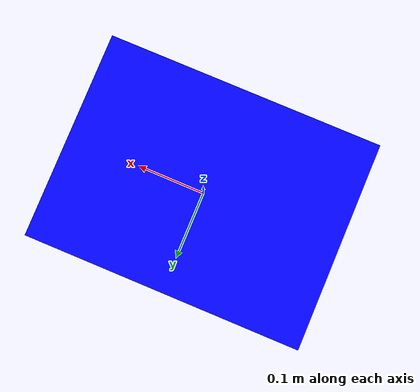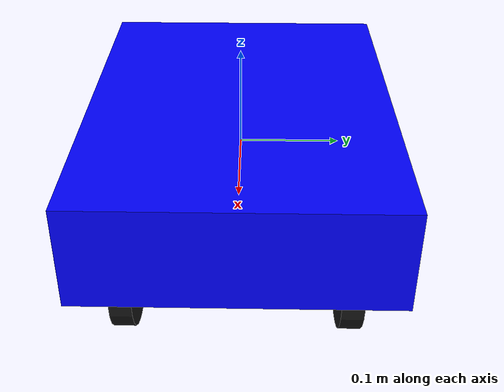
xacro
<?xml version="1.0"?>
<robot xmlns:xacro="http://ros.org/wiki/xacro" name="robot1">

  <!-- Base Link -->
  <link name="robot1_base">
    <visual>
      <geometry>
        <box size="0.4 0.3 0.1"/> <!-- Width, Depth, Height -->
      </geometry>
      <material name="blue">
        <color rgba="0 0 1 1"/>
      </material>
    </visual>
    <collision>
      <geometry>
        <box size="0.4 0.3 0.1"/>
      </geometry>
    </collision>
    <inertial>
      <mass value="2.0"/>
      <origin xyz="0 0 0" rpy="0 0 0"/>
      <inertia ixx="0.1" ixy="0.0" ixz="0.0"
               iyy="0.1" iyz="0.0"
               izz="0.1"/>
    </inertial>
  </link>

  <!-- Wheels -->
  <xacro:macro name="wheel" params="name x y">
    <link name="${name}">
      <visual>
        <geometry>
          <cylinder radius="0.05" length="0.02"/>
        </geometry>
        <material name="black">
          <color rgba="0.1 0.1 0.1 1"/>
        </material>
        <origin rpy="1.5708 0 0" xyz="0 0 0"/>
      </visual>
    </link>

    <joint name="${name}_joint" type="fixed">
      <parent link="robot1_base"/>
      <child link="${name}"/>
      <origin xyz="${x} ${y} -0.05" rpy="0 0 0"/>
    </joint>
  </xacro:macro>

  <xacro:wheel name="front_left_wheel"  x="0.15" y=" 0.10"/>
  <xacro:wheel name="front_right_wheel" x="0.15" y="-0.10"/>
  <xacro:wheel name="rear_left_wheel"   x="-0.15" y=" 0.10"/>
  <xacro:wheel name="rear_right_wheel"  x="-0.15" y="-0.10"/>

</robot>
